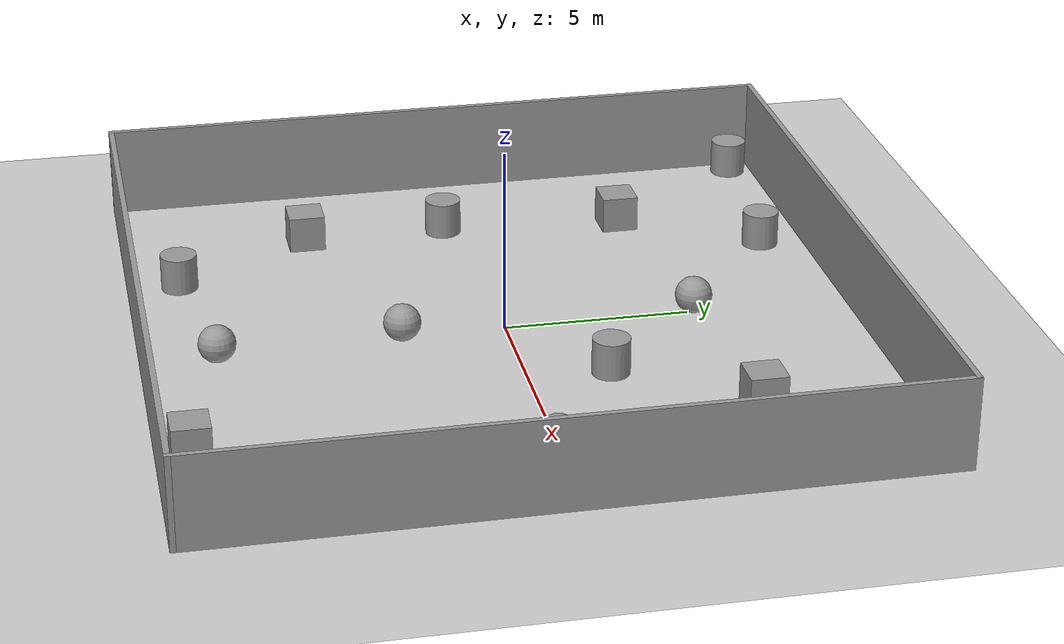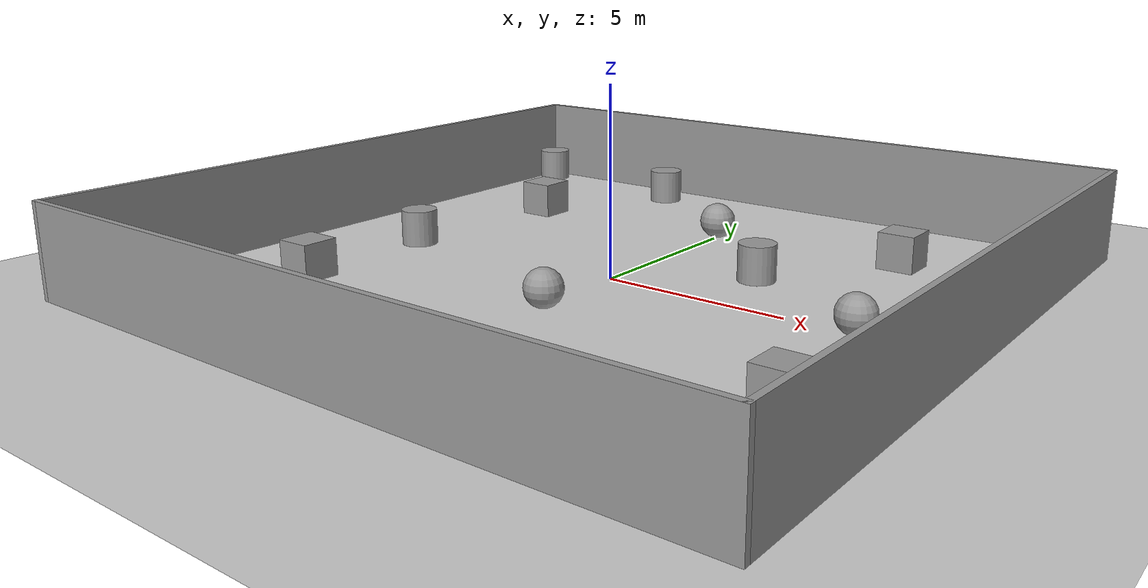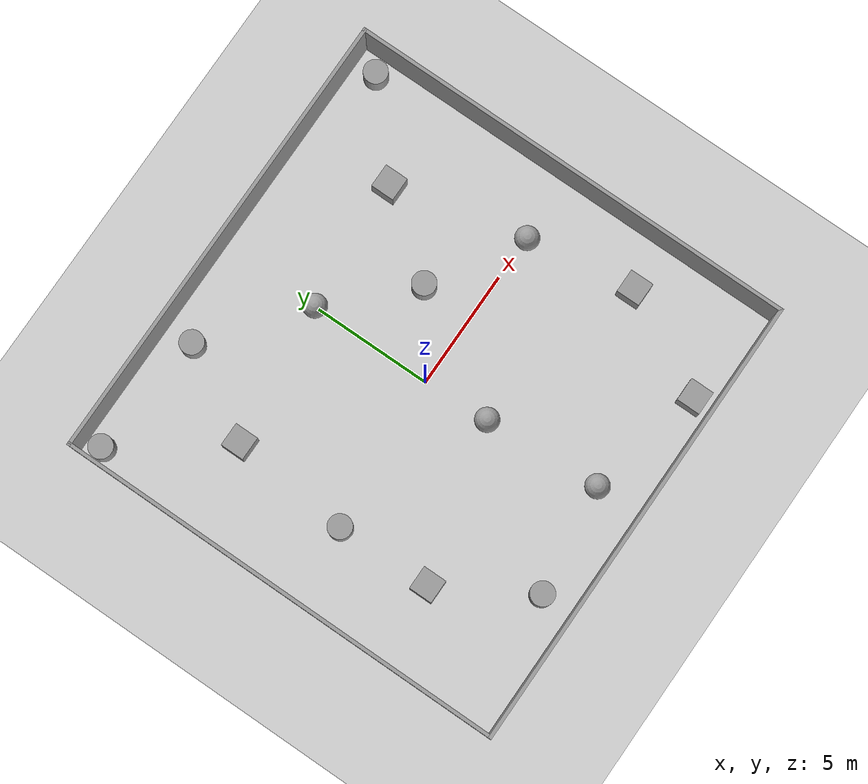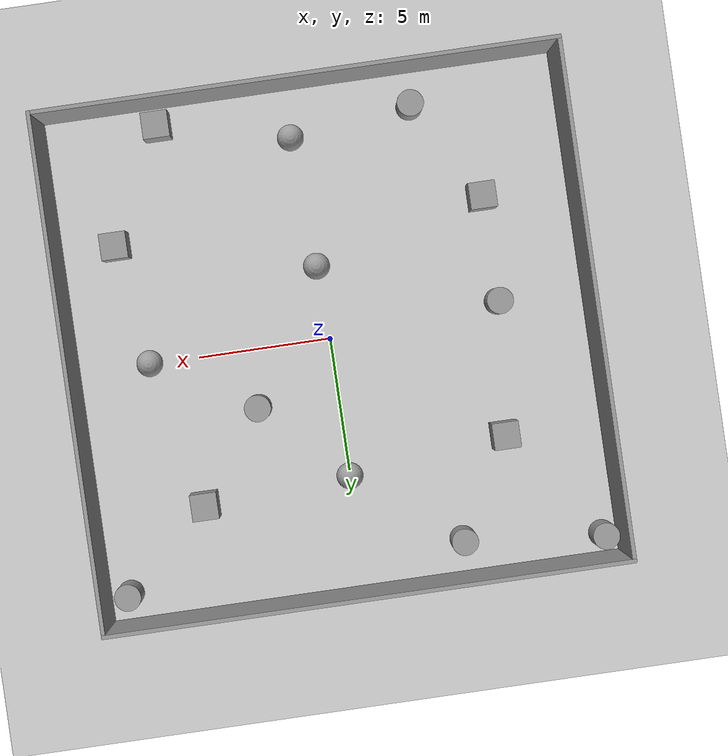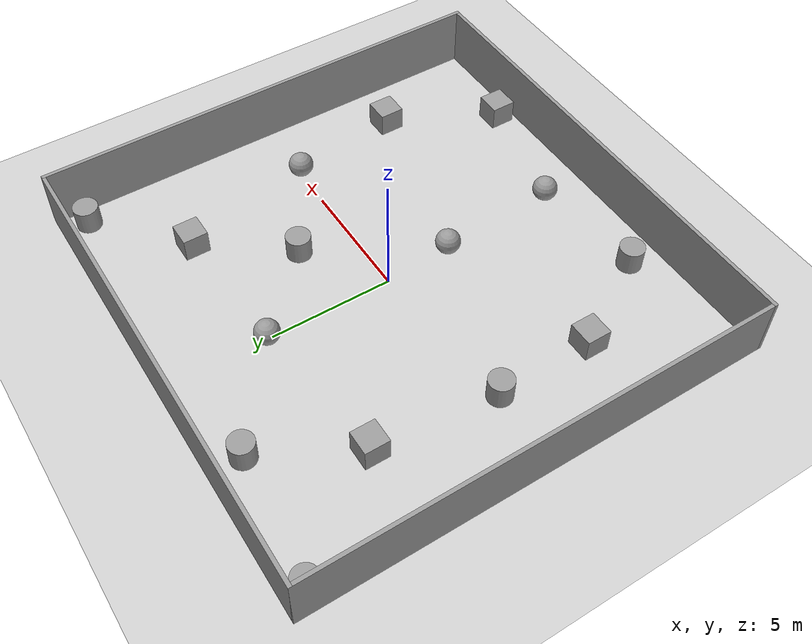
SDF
<sdf version="1.7">
 <world name="default">
  <light name="sun" type="directional">
   <pose>0 0 10 0 -0 0</pose>
   <diffuse>0.8 0.8 0.8 1</diffuse>
   <specular>0.2 0.2 0.2 1</specular>
   <attenuation>
    <range>1000</range>
    <constant>0.9</constant>
    <linear>0.01</linear>
    <quadratic>0.001</quadratic>
   </attenuation>
   <direction>-0.5 0.1 -0.9</direction>
   <spot><inner_angle>0</inner_angle><outer_angle>0</outer_angle><falloff>0</falloff></spot>
  </light>
  <model name="ground_plane">
   <static>1</static>
   <link name="link">
    <collision name="collision">
     <geometry><plane><normal>0 0 1</normal><size>100 100</size></plane></geometry>
     <surface>
      <contact><collide_bitmask>65535</collide_bitmask></contact>
      <friction><ode><mu>100</mu><mu2>50</mu2></ode></friction>
     </surface>
    </collision>
    <visual name="visual">
     <cast_shadows>0</cast_shadows>
     <geometry><plane><normal>0 0 1</normal><size>100 100</size></plane></geometry>
     <material>
      <script><uri>file://media/materials/scripts/gazebo.material</uri><name>Gazebo/Grey</name></script>
     </material>
    </visual>
   </link>
  </model>
  <gravity>0 0 -9.8</gravity>
  <magnetic_field>6e-06 2.3e-05 -4.2e-05</magnetic_field>
  <atmosphere type="adiabatic"/>
  <physics type="ode">
   <max_step_size>0.001</max_step_size>
   <real_time_factor>1</real_time_factor>
   <real_time_update_rate>1000</real_time_update_rate>
  </physics>
  <scene><ambient>0.4 0.4 0.4 1</ambient><background>0.7 0.7 0.7 1</background><shadows>1</shadows></scene>
  <audio><device>default</device></audio>
  <spherical_coordinates>
   <surface_model>EARTH_WGS84</surface_model>
   <latitude_deg>0</latitude_deg>
   <longitude_deg>0</longitude_deg>
   <elevation>0</elevation>
   <heading_deg>0</heading_deg>
  </spherical_coordinates>
  <model name="obstacle">
   <pose>-0.054992 -0.079513 0 0 -0 0</pose>
   <link name="Wall_0">
    <collision name="Wall_0_Collision">
     <geometry><box><size>19.5 0.15 2.5</size></box></geometry>
     <pose>0 0 1.25 0 -0 0</pose>
    </collision>
    <visual name="Wall_0_Visual">
     <pose>0 0 1.25 0 -0 0</pose>
     <geometry><box><size>19.5 0.15 2.5</size></box></geometry>
     <material>
      <script><uri>file://media/materials/scripts/gazebo.material</uri><name>Gazebo/Grey</name></script>
      <ambient>1 1 1 1</ambient>
     </material>
     <meta><layer>0</layer></meta>
    </visual>
    <pose>0 9.55 0 0 -0 0</pose>
   </link>
   <link name="Wall_2">
    <collision name="Wall_2_Collision">
     <geometry><box><size>19.25 0.15 2.5</size></box></geometry>
     <pose>0 0 1.25 0 -0 0</pose>
    </collision>
    <visual name="Wall_2_Visual">
     <pose>0 0 1.25 0 -0 0</pose>
     <geometry><box><size>19.25 0.15 2.5</size></box></geometry>
     <material>
      <script><uri>file://media/materials/scripts/gazebo.material</uri><name>Gazebo/Grey</name></script>
      <ambient>1 1 1 1</ambient>
     </material>
     <meta><layer>0</layer></meta>
    </visual>
    <pose>9.675 -0 0 0 -0 -1.5708</pose>
   </link>
   <link name="Wall_3">
    <collision name="Wall_3_Collision">
     <geometry><box><size>19.5 0.15 2.5</size></box></geometry>
     <pose>0 0 1.25 0 -0 0</pose>
    </collision>
    <visual name="Wall_3_Visual">
     <pose>0 0 1.25 0 -0 0</pose>
     <geometry><box><size>19.5 0.15 2.5</size></box></geometry>
     <material>
      <script><uri>file://media/materials/scripts/gazebo.material</uri><name>Gazebo/Grey</name></script>
      <ambient>1 1 1 1</ambient>
     </material>
     <meta><layer>0</layer></meta>
    </visual>
    <pose>0 -9.55 0 0 -0 3.14159</pose>
   </link>
   <link name="Wall_4">
    <collision name="Wall_4_Collision">
     <geometry><box><size>19.25 0.15 2.5</size></box></geometry>
     <pose>0 0 1.25 0 -0 0</pose>
    </collision>
    <visual name="Wall_4_Visual">
     <pose>0 0 1.25 0 -0 0</pose>
     <geometry><box><size>19.25 0.15 2.5</size></box></geometry>
     <material>
      <script><uri>file://media/materials/scripts/gazebo.material</uri><name>Gazebo/Grey</name></script>
      <ambient>1 1 1 1</ambient>
     </material>
     <meta><layer>0</layer></meta>
    </visual>
    <pose>-9.675 -0 0 0 -0 1.5708</pose>
   </link>
   <static>1</static>
  </model>
  <model name="unit_box">
   <pose>-5.97476 4.47672 0.499995 -1e-05 -0 -0</pose>
   <static>1</static>
   <link name="link">
    <inertial>
     <mass>1</mass>
     <inertia>
      <ixx>0.166667</ixx>
      <ixy>0</ixy>
      <ixz>0</ixz>
      <iyy>0.166667</iyy>
      <iyz>0</iyz>
      <izz>0.166667</izz>
     </inertia>
    </inertial>
    <collision name="collision"><geometry><box><size>1 1 1</size></box></geometry></collision>
    <visual name="visual">
     <geometry><box><size>1 1 1</size></box></geometry>
     <material>
      <script><name>Gazebo/Grey</name><uri>file://media/materials/scripts/gazebo.material</uri></script>
     </material>
    </visual>
   </link>
  </model>
  <model name="unit_box_1">
   <pose>5.51913 5.50519 0.499995 -1e-05 -0 -0</pose>
   <static>1</static>
   <link name="link">
    <inertial>
     <mass>1</mass>
     <inertia>
      <ixx>0.166667</ixx>
      <ixy>0</ixy>
      <ixz>0</ixz>
      <iyy>0.166667</iyy>
      <iyz>0</iyz>
      <izz>0.166667</izz>
     </inertia>
    </inertial>
    <collision name="collision"><geometry><box><size>1 1 1</size></box></geometry></collision>
    <visual name="visual">
     <geometry><box><size>1 1 1</size></box></geometry>
     <material>
      <script><name>Gazebo/Grey</name><uri>file://media/materials/scripts/gazebo.material</uri></script>
     </material>
    </visual>
   </link>
  </model>
  <model name="unit_box_2">
   <pose>-6.37554 -4.49954 0.499995 0 1e-05 0</pose>
   <static>1</static>
   <link name="link">
    <inertial>
     <mass>1</mass>
     <inertia>
      <ixx>0.166667</ixx>
      <ixy>0</ixy>
      <ixz>0</ixz>
      <iyy>0.166667</iyy>
      <iyz>0</iyz>
      <izz>0.166667</izz>
     </inertia>
    </inertial>
    <collision name="collision"><geometry><box><size>1 1 1</size></box></geometry></collision>
    <visual name="visual">
     <geometry><box><size>1 1 1</size></box></geometry>
     <material>
      <script><name>Gazebo/Grey</name><uri>file://media/materials/scripts/gazebo.material</uri></script>
     </material>
    </visual>
   </link>
  </model>
  <model name="unit_box_3">
   <pose>7.48425 -4.5839 0.499995 -1e-05 -0 -0</pose>
   <static>1</static>
   <link name="link">
    <inertial>
     <mass>1</mass>
     <inertia>
      <ixx>0.166667</ixx>
      <ixy>0</ixy>
      <ixz>0</ixz>
      <iyy>0.166667</iyy>
      <iyz>0</iyz>
      <izz>0.166667</izz>
     </inertia>
    </inertial>
    <collision name="collision"><geometry><box><size>1 1 1</size></box></geometry></collision>
    <visual name="visual">
     <geometry><box><size>1 1 1</size></box></geometry>
     <material>
      <script><name>Gazebo/Grey</name><uri>file://media/materials/scripts/gazebo.material</uri></script>
     </material>
    </visual>
   </link>
  </model>
  <model name="unit_sphere">
   <pose>0.40017 -7.68403 0.5 0 -0 0</pose>
   <static>1</static>
   <link name="link">
    <inertial>
     <mass>1</mass>
     <inertia><ixx>0.1</ixx><ixy>0</ixy><ixz>0</ixz><iyy>0.1</iyy><iyz>0</iyz><izz>0.1</izz></inertia>
    </inertial>
    <collision name="collision"><geometry><sphere><radius>0.5</radius></sphere></geometry></collision>
    <visual name="visual">
     <geometry><sphere><radius>0.5</radius></sphere></geometry>
     <material>
      <script><name>Gazebo/Grey</name><uri>file://media/materials/scripts/gazebo.material</uri></script>
     </material>
    </visual>
   </link>
  </model>
  <model name="unit_box_0">
   <pose>5.31429 -8.82179 0.499995 -1e-05 -0 -0</pose>
   <static>1</static>
   <link name="link">
    <inertial>
     <mass>1</mass>
     <inertia>
      <ixx>0.166667</ixx>
      <ixy>0</ixy>
      <ixz>0</ixz>
      <iyy>0.166667</iyy>
      <iyz>0</iyz>
      <izz>0.166667</izz>
     </inertia>
    </inertial>
    <collision name="collision"><geometry><box><size>1 1 1</size></box></geometry></collision>
    <visual name="visual">
     <geometry><box><size>1 1 1</size></box></geometry>
     <material>
      <script><name>Gazebo/Grey</name><uri>file://media/materials/scripts/gazebo.material</uri></script>
     </material>
    </visual>
   </link>
  </model>
  <model name="unit_sphere_0">
   <static>1</static>
   <pose>-0.005741 5.16972 0.5 0 -0 0</pose>
   <link name="link">
    <inertial>
     <mass>1</mass>
     <inertia><ixx>0.1</ixx><ixy>0</ixy><ixz>0</ixz><iyy>0.1</iyy><iyz>0</iyz><izz>0.1</izz></inertia>
    </inertial>
    <collision name="collision"><geometry><sphere><radius>0.5</radius></sphere></geometry></collision>
    <visual name="visual">
     <geometry><sphere><radius>0.5</radius></sphere></geometry>
     <material>
      <script><name>Gazebo/Grey</name><uri>file://media/materials/scripts/gazebo.material</uri></script>
     </material>
    </visual>
   </link>
  </model>
  <model name="unit_sphere_1">
   <pose>6.82203 -0.059131 0.5 0 -0 0</pose>
   <static>1</static>
   <link name="link">
    <inertial>
     <mass>1</mass>
     <inertia><ixx>0.1</ixx><ixy>0</ixy><ixz>0</ixz><iyy>0.1</iyy><iyz>0</iyz><izz>0.1</izz></inertia>
    </inertial>
    <collision name="collision"><geometry><sphere><radius>0.5</radius></sphere></geometry></collision>
    <visual name="visual">
     <geometry><sphere><radius>0.5</radius></sphere></geometry>
     <material>
      <script><name>Gazebo/Grey</name><uri>file://media/materials/scripts/gazebo.material</uri></script>
     </material>
    </visual>
   </link>
  </model>
  <model name="unit_cylinder">
   <pose>-6.45849 -0.520049 0.499992 -3e-06 4e-06 0</pose>
   <static>1</static>
   <link name="link">
    <inertial>
     <mass>1</mass>
     <inertia><ixx>0.145833</ixx><ixy>0</ixy><ixz>0</ixz><iyy>0.145833</iyy><iyz>0</iyz><izz>0.125</izz></inertia>
    </inertial>
    <collision name="collision">
     <geometry><cylinder><radius>0.5</radius><length>1</length></cylinder></geometry>
    </collision>
    <visual name="visual">
     <geometry><cylinder><radius>0.5</radius><length>1</length></cylinder></geometry>
     <material>
      <script><name>Gazebo/Grey</name><uri>file://media/materials/scripts/gazebo.material</uri></script>
     </material>
    </visual>
   </link>
  </model>
  <model name="unit_sphere_2">
   <pose>0.115931 -2.78279 0.5 0 -0 0</pose>
   <static>1</static>
   <link name="link">
    <inertial>
     <mass>1</mass>
     <inertia><ixx>0.1</ixx><ixy>0</ixy><ixz>0</ixz><iyy>0.1</iyy><iyz>0</iyz><izz>0.1</izz></inertia>
    </inertial>
    <collision name="collision"><geometry><sphere><radius>0.5</radius></sphere></geometry></collision>
    <visual name="visual">
     <geometry><sphere><radius>0.5</radius></sphere></geometry>
     <material>
      <script><name>Gazebo/Grey</name><uri>file://media/materials/scripts/gazebo.material</uri></script>
     </material>
    </visual>
   </link>
  </model>
  <model name="unit_cylinder_0">
   <pose>3.03769 2.16551 0.499992 -3e-06 -4e-06 -0</pose>
   <static>1</static>
   <link name="link">
    <inertial>
     <mass>1</mass>
     <inertia><ixx>0.145833</ixx><ixy>0</ixy><ixz>0</ixz><iyy>0.145833</iyy><iyz>0</iyz><izz>0.125</izz></inertia>
    </inertial>
    <collision name="collision">
     <geometry><cylinder><radius>0.5</radius><length>1</length></cylinder></geometry>
    </collision>
    <visual name="visual">
     <geometry><cylinder><radius>0.5</radius><length>1</length></cylinder></geometry>
     <material>
      <script><name>Gazebo/Grey</name><uri>file://media/materials/scripts/gazebo.material</uri></script>
     </material>
    </visual>
   </link>
  </model>
  <model name="unit_cylinder_1">
   <pose>-3.89398 8.1761 0.499993 -3e-06 -3e-06 0</pose>
   <static>1</static>
   <link name="link">
    <inertial>
     <mass>1</mass>
     <inertia><ixx>0.145833</ixx><ixy>0</ixy><ixz>0</ixz><iyy>0.145833</iyy><iyz>0</iyz><izz>0.125</izz></inertia>
    </inertial>
    <collision name="collision">
     <geometry><cylinder><radius>0.5</radius><length>1</length></cylinder></geometry>
    </collision>
    <visual name="visual">
     <geometry><cylinder><radius>0.5</radius><length>1</length></cylinder></geometry>
     <material>
      <script><name>Gazebo/Grey</name><uri>file://media/materials/scripts/gazebo.material</uri></script>
     </material>
    </visual>
   </link>
  </model>
  <model name="unit_cylinder_2">
   <pose>8.81246 8.43962 0.499997 3e-06 4e-06 -0</pose>
   <static>1</static>
   <link name="link">
    <inertial>
     <mass>1</mass>
     <inertia><ixx>0.145833</ixx><ixy>0</ixy><ixz>0</ixz><iyy>0.145833</iyy><iyz>0</iyz><izz>0.125</izz></inertia>
    </inertial>
    <collision name="collision">
     <geometry><cylinder><radius>0.5</radius><length>1</length></cylinder></geometry>
    </collision>
    <visual name="visual">
     <geometry><cylinder><radius>0.5</radius><length>1</length></cylinder></geometry>
     <material>
      <script><name>Gazebo/Grey</name><uri>file://media/materials/scripts/gazebo.material</uri></script>
     </material>
    </visual>
   </link>
  </model>
  <model name="unit_cylinder_3">
   <pose>-9.12084 8.70569 0.499993 -3e-06 -4e-06 -0</pose>
   <static>1</static>
   <link name="link">
    <inertial>
     <mass>1</mass>
     <inertia><ixx>0.145833</ixx><ixy>0</ixy><ixz>0</ixz><iyy>0.145833</iyy><iyz>0</iyz><izz>0.125</izz></inertia>
    </inertial>
    <collision name="collision">
     <geometry><cylinder><radius>0.5</radius><length>1</length></cylinder></geometry>
    </collision>
    <visual name="visual">
     <geometry><cylinder><radius>0.5</radius><length>1</length></cylinder></geometry>
     <material>
      <script><name>Gazebo/Grey</name><uri>file://media/materials/scripts/gazebo.material</uri></script>
     </material>
    </visual>
   </link>
  </model>
  <model name="unit_cylinder_4">
   <pose>-4.19445 -8.26329 0.499997 3e-06 4e-06 -0</pose>
   <static>1</static>
   <link name="link">
    <inertial>
     <mass>1</mass>
     <inertia><ixx>0.145833</ixx><ixy>0</ixy><ixz>0</ixz><iyy>0.145833</iyy><iyz>0</iyz><izz>0.125</izz></inertia>
    </inertial>
    <collision name="collision">
     <geometry><cylinder><radius>0.5</radius><length>1</length></cylinder></geometry>
    </collision>
    <visual name="visual">
     <geometry><cylinder><radius>0.5</radius><length>1</length></cylinder></geometry>
     <material>
      <script><name>Gazebo/Grey</name><uri>file://media/materials/scripts/gazebo.material</uri></script>
     </material>
    </visual>
   </link>
  </model>
 </world>
</sdf>
